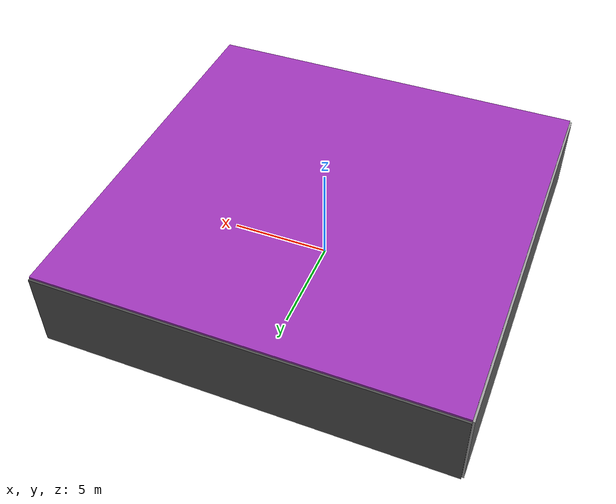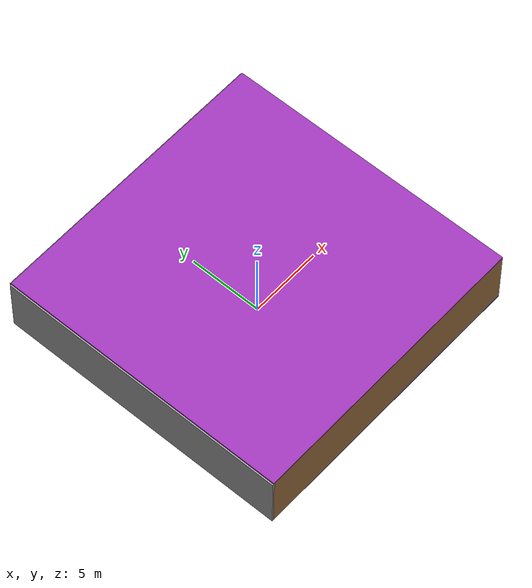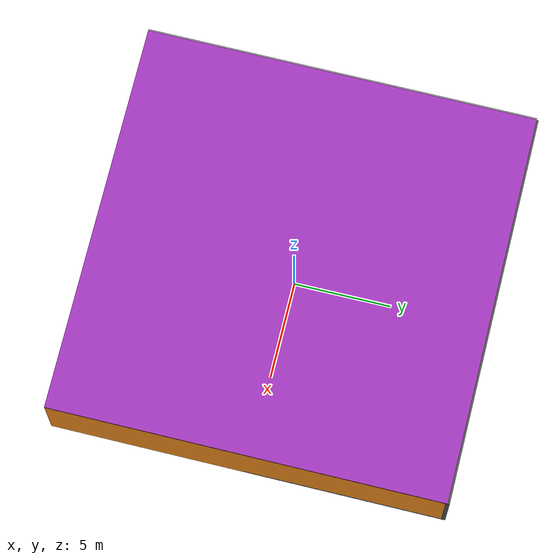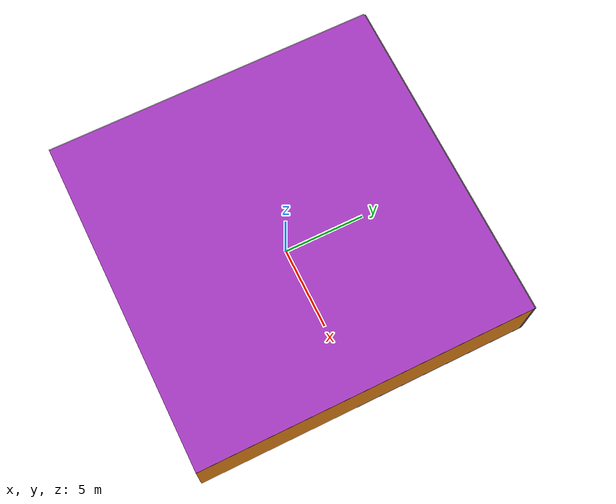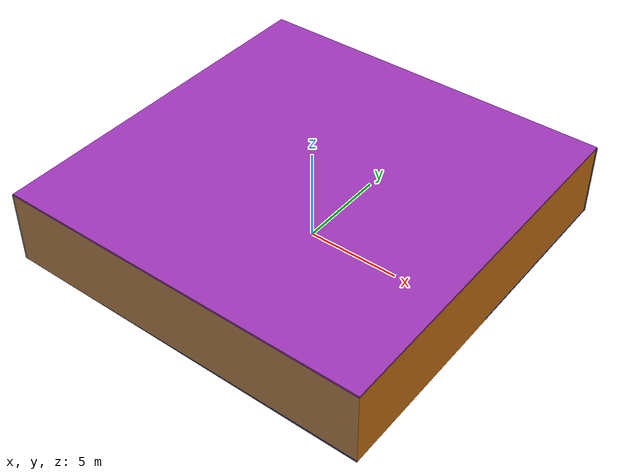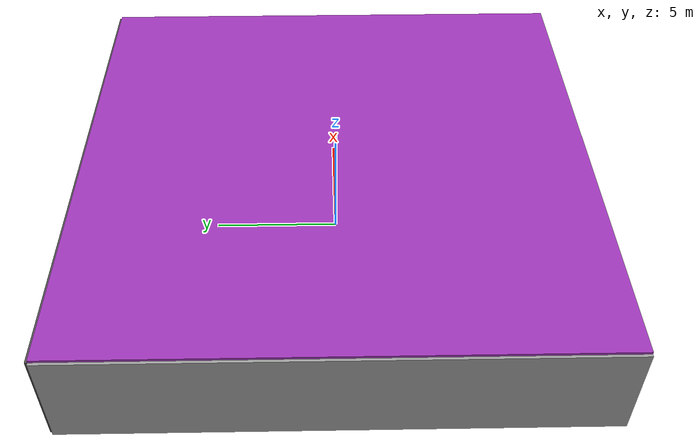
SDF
<sdf version="1.4">
 <world name="default">
  <physics type="ode">
   <max_step_size>0.001</max_step_size>
   <real_time_factor>1</real_time_factor>
   <real_time_update_rate>1000</real_time_update_rate>
   <gravity>0 0 -9.8</gravity>
  </physics>
  <scene><ambient>0.4 0.4 0.4 1</ambient><background>0.7 0.7 0.7 1</background><shadows>1</shadows></scene>
  <model name="Surrounding">
   <static>1</static>
   <link name="Ceiling">
    <collision name="Ceiling_Collision"><geometry><box><size>20 20 0.1</size></box></geometry></collision>
    <visual name="Ceiling_Visual">
     <geometry><box><size>20 20 0.1</size></box></geometry>
     <material>
      <script><uri>file://media/materials/scripts/gazebo.material</uri><name>Gazebo/PurpleGlow</name></script>
     </material>
    </visual>
    <pose>0 0 4.05 0 0 0</pose>
   </link>
   <link name="Wall_South">
    <collision name="Wall_South_Collision">
     <geometry><box><size>20 0 4</size></box></geometry>
     <pose>0 0 2 0 -0 0</pose>
    </collision>
    <visual name="Wall_South_Visual">
     <pose>0 0 2 0 -0 0</pose>
     <geometry><box><size>20 0 4</size></box></geometry>
     <material>
      <script><uri>file://media/materials/scripts/gazebo.material</uri><name>Gazebo/WoodFloor</name></script>
     </material>
    </visual>
    <velocity_decay><linear>0</linear><angular>0</angular></velocity_decay>
    <pose>0 -10 0 0 -0 0</pose>
   </link>
   <link name="Wall_East">
    <collision name="Wall_21_Collision">
     <geometry><box><size>20 0 4</size></box></geometry>
     <pose>0 0 2 0 -0 0</pose>
    </collision>
    <visual name="Wall_21_Visual">
     <pose>0 0 2 0 -0 0</pose>
     <geometry><box><size>20 0 4</size></box></geometry>
     <material>
      <script><uri>file://media/materials/scripts/gazebo.material</uri><name>Gazebo/Orange</name></script>
     </material>
    </visual>
    <velocity_decay><linear>0</linear><angular>0</angular></velocity_decay>
    <pose>10 0 0 0 -0 1.5708</pose>
   </link>
   <link name="Wall_North">
    <collision name="Wall_22_Collision">
     <geometry><box><size>20 0.2 4</size></box></geometry>
     <pose>0 0 2 0 -0 0</pose>
    </collision>
    <visual name="Wall_22_Visual">
     <pose>0 0 2 0 -0 0</pose>
     <geometry><box><size>20 0.2 4</size></box></geometry>
     <material>
      <script><uri>file://media/materials/scripts/gazebo.material</uri><name>Gazebo/Road</name></script>
     </material>
    </visual>
    <velocity_decay><linear>0</linear><angular>0</angular></velocity_decay>
    <pose>0 10 0 0 -0 0</pose>
   </link>
   <link name="Wall_West">
    <collision name="Wall_23_Collision">
     <geometry><box><size>20 0.2 4</size></box></geometry>
     <pose>0 0 2 0 -0 0</pose>
    </collision>
    <visual name="Wall_23_Visual">
     <pose>0 0 2 0 -0 0</pose>
     <geometry><box><size>20 0.2 4</size></box></geometry>
     <material>
      <script><uri>file://media/materials/scripts/gazebo.material</uri><name>Gazebo/Grey</name></script>
     </material>
    </visual>
    <velocity_decay><linear>0</linear><angular>0</angular></velocity_decay>
    <pose>-10 0 0 0 0 -1.5708</pose>
   </link>
   <link name="Ground_link">
    <collision name="collision">
     <pose>0 0 .05 0 -0 0</pose>
     <geometry><box><size>20 20 0.1</size></box></geometry>
    </collision>
    <visual name="visual">
     <pose>0 0 .05 0 -0 0</pose>
     <geometry><box><size>20 20 0.1</size></box></geometry>
     <material>
      <script><uri>file://media/materials/scripts/gazebo.material</uri><name>Gazebo/Blue</name></script>
     </material>
    </visual>
   </link>
   <static>1</static>
  </model>
  <spherical_coordinates>
   <surface_model>EARTH_WGS84</surface_model>
   <latitude_deg>0</latitude_deg>
   <longitude_deg>0</longitude_deg>
   <elevation>0</elevation>
   <heading_deg>0</heading_deg>
  </spherical_coordinates>
  <light name="lightball_0" type="diffuse">
   <diffuse>0.8 0.8 0.8 1</diffuse>
   <specular>0.2 0.2 0.2 1</specular>
   <attenuation>
    <range>100</range>
    <constant>0.7</constant>
    <linear>0.01</linear>
    <quadratic>0.001</quadratic>
   </attenuation>
   <direction>-0.5 0.1 -0.9</direction>
   <pose>0.433308515367 -8.00252442047 2.77368796388 0 0 0</pose>
  </light>
  <light name="lightball_1" type="diffuse">
   <diffuse>0.8 0.8 0.8 1</diffuse>
   <specular>0.2 0.2 0.2 1</specular>
   <attenuation>
    <range>100</range>
    <constant>0.7</constant>
    <linear>0.01</linear>
    <quadratic>0.001</quadratic>
   </attenuation>
   <direction>-0.5 0.1 -0.9</direction>
   <pose>-6.62413767636 0.0780635271867 0.770364325612 0 0 0</pose>
  </light>
  <light name="lightball_2" type="diffuse">
   <diffuse>0.8 0.8 0.8 1</diffuse>
   <specular>0.2 0.2 0.2 1</specular>
   <attenuation>
    <range>100</range>
    <constant>0.7</constant>
    <linear>0.01</linear>
    <quadratic>0.001</quadratic>
   </attenuation>
   <direction>-0.5 0.1 -0.9</direction>
   <pose>8.48529278101 6.14178358162 2.31984732311 0 0 0</pose>
  </light>
  <light name="lightball_3" type="diffuse">
   <diffuse>0.8 0.8 0.8 1</diffuse>
   <specular>0.2 0.2 0.2 1</specular>
   <attenuation>
    <range>100</range>
    <constant>0.7</constant>
    <linear>0.01</linear>
    <quadratic>0.001</quadratic>
   </attenuation>
   <direction>-0.5 0.1 -0.9</direction>
   <pose>-1.08520731519 -4.33131914202 1.51094262245 0 0 0</pose>
  </light>
  <light name="lightball_4" type="diffuse">
   <diffuse>0.8 0.8 0.8 1</diffuse>
   <specular>0.2 0.2 0.2 1</specular>
   <attenuation>
    <range>100</range>
    <constant>0.7</constant>
    <linear>0.01</linear>
    <quadratic>0.001</quadratic>
   </attenuation>
   <direction>-0.5 0.1 -0.9</direction>
   <pose>-3.75636613368 -1.17420046374 1.36139943835 0 0 0</pose>
  </light>
  <light name="lightball_5" type="diffuse">
   <diffuse>0.8 0.8 0.8 1</diffuse>
   <specular>0.2 0.2 0.2 1</specular>
   <attenuation>
    <range>100</range>
    <constant>0.7</constant>
    <linear>0.01</linear>
    <quadratic>0.001</quadratic>
   </attenuation>
   <direction>-0.5 0.1 -0.9</direction>
   <pose>2.4499929589 -5.6449609805 2.46834582406 0 0 0</pose>
  </light>
  <light name="lightball_6" type="diffuse">
   <diffuse>0.8 0.8 0.8 1</diffuse>
   <specular>0.2 0.2 0.2 1</specular>
   <attenuation>
    <range>100</range>
    <constant>0.7</constant>
    <linear>0.01</linear>
    <quadratic>0.001</quadratic>
   </attenuation>
   <direction>-0.5 0.1 -0.9</direction>
   <pose>5.10293945142 6.43573011113 0.7389933683 0 0 0</pose>
  </light>
  <light name="lightball_7" type="diffuse">
   <diffuse>0.8 0.8 0.8 1</diffuse>
   <specular>0.2 0.2 0.2 1</specular>
   <attenuation>
    <range>100</range>
    <constant>0.7</constant>
    <linear>0.01</linear>
    <quadratic>0.001</quadratic>
   </attenuation>
   <direction>-0.5 0.1 -0.9</direction>
   <pose>2.22810035069 8.26611082606 1.85048189346 0 0 0</pose>
  </light>
  <light name="lightball_8" type="diffuse">
   <diffuse>0.8 0.8 0.8 1</diffuse>
   <specular>0.2 0.2 0.2 1</specular>
   <attenuation>
    <range>100</range>
    <constant>0.7</constant>
    <linear>0.01</linear>
    <quadratic>0.001</quadratic>
   </attenuation>
   <direction>-0.5 0.1 -0.9</direction>
   <pose>9.44899183947 -8.49787135487 2.32814346145 0 0 0</pose>
  </light>
  <light name="lightball_9" type="diffuse">
   <diffuse>0.8 0.8 0.8 1</diffuse>
   <specular>0.2 0.2 0.2 1</specular>
   <attenuation>
    <range>100</range>
    <constant>0.7</constant>
    <linear>0.01</linear>
    <quadratic>0.001</quadratic>
   </attenuation>
   <direction>-0.5 0.1 -0.9</direction>
   <pose>-7.51454744289 7.9290122068 3.21854501498 0 0 0</pose>
  </light>
  <light name="lightball_10" type="diffuse">
   <diffuse>0.8 0.8 0.8 1</diffuse>
   <specular>0.2 0.2 0.2 1</specular>
   <attenuation>
    <range>100</range>
    <constant>0.7</constant>
    <linear>0.01</linear>
    <quadratic>0.001</quadratic>
   </attenuation>
   <direction>-0.5 0.1 -0.9</direction>
   <pose>4.41811316548 3.36338635718 2.93985618052 0 0 0</pose>
  </light>
  <include><uri>model://cabinet</uri><pose>-7.17489277252 -7.65651739197 0 0 0 2.50927814276</pose></include>
  <include>
   <uri>model://robocup_3Dsim_goal</uri>
   <pose>-3.9665808369 -1.28753411026 0 0 0 2.31213003675</pose>
  </include>
  <include>
   <uri>model://construction_cone</uri>
   <pose>-1.84550476447 8.1786938258 0 0 0 1.28021344862</pose>
  </include>
  <include><uri>model://cabinet</uri><pose>1.31399080975 -6.96379937761 0 0 0 1.0804500236</pose></include>
  <include>
   <uri>model://construction_cone</uri>
   <pose>4.72083760179 -7.06550168993 0 0 0 3.11280586799</pose>
  </include>
  <include>
   <uri>model://textured_shapes</uri>
   <pose>4.97612880822 -3.75168070887 0 0 0 2.84580905157</pose>
  </include>
  <include><uri>model://cabinet</uri><pose>6.8181628884 -1.55076386717 0 0 0 0.493831137818</pose></include>
  <include><uri>model://table</uri><pose>6.74978240444 8.06000864349 0 0 0 0.0851663986911</pose></include>
 </world>
</sdf>

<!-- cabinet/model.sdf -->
<sdf version="1.5">
  <model name="cabinet">
    <static>true</static>
    <link name="cabinet_bottom_plate">
      <inertial>
        <pose>0 0 -1 0 0 0</pose>
        <inertia>
          <ixx>2.050000</ixx>
          <ixy>0</ixy>
          <ixz>0</ixz>
          <iyy>2.050000</iyy>
          <iyz>0</iyz>
          <izz>2.050000</izz>
        </inertia>
        <mass>25.000000</mass>
      </inertial>
      <collision name="cabinet_bottom_plate_geom">
        <pose>0 0 0.010000 0 0 0</pose>
        <geometry>
          <box>
            <size>0.450000 0.450000 0.020000</size>
          </box>
        </geometry>
      </collision>
      <visual name="cabinet_bottom_plate_geom_visual">
        <pose>0 0 0.010000 0 0 0</pose>
        <geometry>
          <box>
            <size>0.450000 0.450000 0.020000</size>
          </box>
        </geometry>
        <material>
          <script>
            <uri>model://media/materials/scripts/gazebo.material</uri>
            <name>Gazebo/Wood</name>
          </script>
        </material>
      </visual>
      <collision name="cabinet_bottom_plate_geom_cabinet_back_plate">
        <pose>0.235000 0 0.510000 0 0 0</pose>
        <geometry>
          <box>
            <size>0.020000 0.450000 1.020000</size>
          </box>
        </geometry>
      </collision>
      <visual name="cabinet_bottom_plate_geom_cabinet_back_plate_visual">
        <pose>0.235000 0 0.510000 0 0 0</pose>
        <geometry>
          <box>
            <size>0.020000 0.450000 1.020000</size>
          </box>
        </geometry>
        <material>
          <script>
            <uri>model://media/materials/scripts/gazebo.material</uri>
            <name>Gazebo/Wood</name>
          </script>
        </material>
      </visual>
      <collision name="cabinet_bottom_plate_geom_cabinet_left_plate">
        <pose>0 0.235000 0.510000 0 0 0</pose>
        <geometry>
          <box>
            <size>0.450000 0.020000 1.020000</size>
          </box>
        </geometry>
      </collision>
      <visual name="cabinet_bottom_plate_geom_cabinet_left_plate_visual">
        <pose>0 0.235000 0.510000 0 0 0</pose>
        <geometry>
          <box>
            <size>0.450000 0.020000 1.020000</size>
          </box>
        </geometry>
        <material>
          <script>
            <uri>model://media/materials/scripts/gazebo.material</uri>
            <name>Gazebo/Wood</name>
          </script>
        </material>
      </visual>
      <collision name="cabinet_bottom_plate_geom_cabinet_middle_plate">
        <pose>0 0 0.510000 0 0 0</pose>
        <geometry>
          <box>
            <size>0.450000 0.450000 0.020000</size>
          </box>
        </geometry>
      </collision>
      <visual name="cabinet_bottom_plate_geom_cabinet_middle_plate_visual">
        <pose>0 0 0.510000 0 0 0</pose>
        <geometry>
          <box>
            <size>0.450000 0.450000 0.020000</size>
          </box>
        </geometry>
        <material>
          <script>
            <uri>model://media/materials/scripts/gazebo.material</uri>
            <name>Gazebo/Wood</name>
          </script>
        </material>
      </visual>
      <collision name="cabinet_bottom_plate_geom_cabinet_right_plate">
        <pose>0 -0.235000 0.510000 0 0 0</pose>
        <geometry>
          <box>
            <size>0.450000 0.020000 1.020000</size>
          </box>
        </geometry>
      </collision>
      <visual name="cabinet_bottom_plate_geom_cabinet_right_plate_visual">
        <pose>0 -0.235000 0.510000 0 0 0</pose>
        <geometry>
          <box>
            <size>0.450000 0.020000 1.020000</size>
          </box>
        </geometry>
        <material>
          <script>
            <uri>model://media/materials/scripts/gazebo.material</uri>
            <name>Gazebo/Wood</name>
          </script>
        </material>
      </visual>
      <collision name="cabinet_bottom_plate_geom_cabinet_top_plate">
        <pose>0 0 1.010000 0 0 0</pose>
        <geometry>
          <box>
            <size>0.450000 0.450000 0.020000</size>
          </box>
        </geometry>
      </collision>
      <visual name="cabinet_bottom_plate_geom_cabinet_top_plate_visual">
        <pose>0 0 1.010000 0 0 0</pose>
        <geometry>
          <box>
            <size>0.450000 0.450000 0.020000</size>
          </box>
        </geometry>
        <material>
          <script>
            <uri>model://media/materials/scripts/gazebo.material</uri>
            <name>Gazebo/Wood</name>
          </script>
        </material>
      </visual>
    </link>
  </model>
</sdf>

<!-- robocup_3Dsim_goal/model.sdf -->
<sdf version="1.5">
  <model name="robocup_3d_goal">
    <static>true</static>
    <link name="left_post">
      <pose>0 1.05 0.45 0 0 0</pose>
      <collision name="collision">
        <geometry>
          <cylinder>
            <radius>0.05</radius>
            <length>0.9</length>
          </cylinder>
        </geometry>
      </collision>
      <visual name="visual">
        <geometry>
          <cylinder>
            <radius>0.05</radius>
            <length>0.9</length>
          </cylinder>
        </geometry>
        <material>
          <script>
            <uri>file://media/materials/scripts/gazebo.material</uri>
            <name>Gazebo/ZincYellow</name>
          </script>
        </material>
      </visual>
    </link>
    <link name="left_support_horiz_lower">
      <pose>0.30 1.05 0.01 0 0 0</pose>
      <collision name="collision">
        <geometry>
          <box>
            <size>0.50 0.02 0.02</size>
          </box>
        </geometry>
      </collision>
      <visual name="visual">
        <geometry>
          <box>
            <size>0.50 0.02 0.02</size>
          </box>
        </geometry>
        <material>
          <script>
            <uri>file://media/materials/scripts/gazebo.material</uri>
            <name>Gazebo/White</name>
          </script>
        </material>
      </visual>
    </link>
    <link name="left_support_horiz_upper">
      <pose>0.30 1.05 0.79 0 0 0</pose>
      <collision name="collision">
        <geometry>
          <box>
            <size>0.50 0.02 0.02</size>
          </box>
        </geometry>
      </collision>
      <visual name="visual">
        <geometry>
          <box>
            <size>0.50 0.02 0.02</size>
          </box>
        </geometry>
        <material>
          <script>
            <uri>file://media/materials/scripts/gazebo.material</uri>
            <name>Gazebo/White</name>
          </script>
        </material>
      </visual>
    </link>
    <link name="left_support_vertical">
      <pose>0.56 1.05 0.4 0 1.5708 0</pose>
      <collision name="collision">
        <geometry>
          <box>
            <size>0.80 0.02 0.02</size>
          </box>
        </geometry>
      </collision>
      <visual name="visual">
        <geometry>
          <box>
            <size>0.80 0.02 0.02</size>
          </box>
        </geometry>
        <material>
          <script>
            <uri>file://media/materials/scripts/gazebo.material</uri>
            <name>Gazebo/White</name>
          </script>
        </material>
      </visual>
    </link>
    <link name="right_support_horiz_lower">
      <pose>0.30 -1.05 0.01 0 0 0</pose>
      <collision name="collision">
        <geometry>
          <box>
            <size>0.50 0.02 0.02</size>
          </box>
        </geometry>
      </collision>
      <visual name="visual">
        <geometry>
          <box>
            <size>0.50 0.02 0.02</size>
          </box>
        </geometry>
        <material>
          <script>
            <uri>file://media/materials/scripts/gazebo.material</uri>
            <name>Gazebo/White</name>
          </script>
        </material>
      </visual>
    </link>
    <link name="right_support_horiz_upper">
      <pose>0.30 -1.05 0.79 0 0 0</pose>
      <collision name="collision">
        <geometry>
          <box>
            <size>0.50 0.02 0.02</size>
          </box>
        </geometry>
      </collision>
      <visual name="visual">
        <geometry>
          <box>
            <size>0.50 0.02 0.02</size>
          </box>
        </geometry>
        <material>
          <script>
            <uri>file://media/materials/scripts/gazebo.material</uri>
            <name>Gazebo/White</name>
          </script>
        </material>
      </visual>
    </link>
    <link name="right_support_vertical">
      <pose>0.56 -1.05 0.4 0 1.5708 0</pose>
      <collision name="collision">
        <geometry>
          <box>
            <size>0.80 0.02 0.02</size>
          </box>
        </geometry>
      </collision>
      <visual name="visual">
        <geometry>
          <box>
            <size>0.80 0.02 0.02</size>
          </box>
        </geometry>
        <material>
          <script>
            <uri>file://media/materials/scripts/gazebo.material</uri>
            <name>Gazebo/White</name>
          </script>
        </material>
      </visual>
    </link>
    <link name="center_support_horiz_lower">
      <pose>0.56 0 0.01 0 1.5708 0</pose>
      <collision name="collision">
        <geometry>
          <box>
            <size>0.02 2.08 0.02</size>
          </box>
        </geometry>
      </collision>
      <visual name="visual">
        <geometry>
          <box>
            <size>0.02 2.08 0.02</size>
          </box>
        </geometry>
        <material>
          <script>
            <uri>file://media/materials/scripts/gazebo.material</uri>
            <name>Gazebo/White</name>
          </script>
        </material>
      </visual>
    </link>
    <link name="center_support_horiz_upper">
      <pose>0.56 0 0.79 0 1.5708 0</pose>
      <collision name="collision">
        <geometry>
          <box>
            <size>0.02 2.08 0.02</size>
          </box>
        </geometry>
      </collision>
      <visual name="visual">
        <geometry>
          <box>
            <size>0.02 2.08 0.02</size>
          </box>
        </geometry>
        <material>
          <script>
            <uri>file://media/materials/scripts/gazebo.material</uri>
            <name>Gazebo/White</name>
          </script>
        </material>
      </visual>
    </link>
    <link name="right_post">
      <pose>0 -1.05 0.45 0 0 0</pose>
      <collision name="collision">
        <geometry>
          <cylinder>
            <radius>0.05</radius>
            <length>0.9</length>
          </cylinder>
        </geometry>
      </collision>
      <visual name="visual">
        <geometry>
          <cylinder>
            <radius>0.05</radius>
            <length>0.9</length>
          </cylinder>
        </geometry>
        <material>
          <script>
            <uri>file://media/materials/scripts/gazebo.material</uri>
            <name>Gazebo/ZincYellow</name>
          </script>
        </material>
      </visual>
    </link>
    <link name="crossbar">
      <pose>0 0 0.85 1.57 1.57 0</pose>
      <collision name="collision">
        <geometry>
          <cylinder>
            <radius>0.05</radius>
            <length>2.0</length>
          </cylinder>
        </geometry>
      </collision>
      <visual name="visual">
        <geometry>
          <cylinder>
            <radius>0.05</radius>
            <length>2.0</length>
          </cylinder>
        </geometry>
        <material>
          <script>
            <uri>file://media/materials/scripts/gazebo.material</uri>
            <name>Gazebo/ZincYellow</name>
          </script>
        </material>
      </visual>
    </link>
    <link name="center_net">
      <pose>0.56 0 0.40 0 0 0</pose>
      <collision name="collision">
        <geometry>
          <box>
            <size>0.01 2.1 0.80</size>
          </box>
        </geometry>
      </collision>
      <visual name="visual">
        <geometry>
          <box>
            <size>0.01 2.1 0.80</size>
          </box>
        </geometry>
        <material>
          <script>
            <uri>model://../model_source/models/robocup09_spl_field/materials/scripts/</uri>
            <uri>model://../model_source/models/robocup09_spl_field/materials/textures/</uri>
            <name>RoboCup/Net</name>
          </script>
        </material>
      </visual>
    </link>
    <link name="left_net">
      <pose>0.30 1.05 0.40 0 0 0</pose>
      <collision name="collision">
        <geometry>
          <box>
            <size>0.50 0.01 0.76</size>
          </box>
        </geometry>
      </collision>
      <visual name="visual">
        <geometry>
          <box>
            <size>0.50 0.01 0.76</size>
          </box>
        </geometry>
        <material>
          <script>
            <uri>model://../model_source/models/robocup09_spl_field/materials/scripts/</uri>
            <uri>model://../model_source/models/robocup09_spl_field/materials/textures/</uri>
            <name>RoboCup/Net</name>
          </script>
        </material>
      </visual>
    </link>
    <link name="right_net">
      <pose>0.30 -1.05 0.40 0 0 0</pose>
      <collision name="collision">
        <geometry>
          <box>
            <size>0.50 0.01 0.76</size>
          </box>
        </geometry>
      </collision>
      <visual name="visual">
        <geometry>
          <box>
            <size>0.50 0.01 0.76</size>
          </box>
        </geometry>
        <material>
          <script>
            <uri>model://../model_source/models/robocup09_spl_field/materials/scripts/</uri>
            <uri>model://../model_source/models/robocup09_spl_field/materials/textures/</uri>
            <name>RoboCup/Net</name>
          </script>
        </material>
      </visual>
    </link>
  </model>
</sdf>

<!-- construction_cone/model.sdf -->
<sdf version="1.5">
  <model name="Construction Cone">
    <link name="link">
      <collision name="collision">
        <geometry>
          <mesh>
            <scale>10 10 10</scale>
            <uri>file://isr-testbed/construction_cone/meshes/construction_cone.dae</uri>
          </mesh>
        </geometry>
      </collision>
      <visual name="visual">
        <geometry>
          <mesh>
            <scale>10 10 10</scale>
            <uri>file://isr-testbed/construction_cone/meshes/construction_cone.dae</uri>
          </mesh>
        </geometry>
      </visual>
    </link>
  </model>
</sdf>

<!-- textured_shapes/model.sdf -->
<sdf version="1.6">
  <model name="textured_shapes">
    <pose>0 0 0.5 0 0 0</pose>
    <link name="box">
      <pose>0 -1.5 0 0 0 0</pose>
      <collision name="collision">
        <geometry>
          <box>
            <size>1 1 1</size>
          </box>
        </geometry>
      </collision>
      <visual name="visual">
        <geometry>
          <box>
            <size>1 1 1</size>
          </box>
        </geometry>
        <material>
          <script>
            <uri>model://../model_source/models/textured_shapes/materials/scripts</uri>
            <uri>model://../model_source/models/textured_shapes/materials/textures</uri>
            <name>TexturedShape/Squares</name>
          </script>
        </material>
      </visual>
    </link>
    <link name="sphere">
      <collision name="collision">
        <geometry>
          <sphere>
            <radius>0.5</radius>
          </sphere>
        </geometry>
      </collision>
      <visual name="visual">
        <geometry>
          <sphere>
            <radius>0.5</radius>
          </sphere>
        </geometry>
        <material>
          <script>
            <uri>model://../model_source/models/textured_shapes/materials/scripts</uri>
            <uri>model://../model_source/models/textured_shapes/materials/textures</uri>
            <name>TexturedShape/Squares</name>
          </script>
        </material>
      </visual>
    </link>
    <link name="cylinder">
      <pose>0 1.5 0 0 0 0</pose>
      <collision name="collision">
        <geometry>
          <cylinder>
            <radius>0.5</radius>
            <length>1</length>
          </cylinder>
        </geometry>
      </collision>
      <visual name="visual">
        <geometry>
          <cylinder>
            <radius>0.5</radius>
            <length>1</length>
          </cylinder>
        </geometry>
        <material>
          <script>
            <uri>model://../model_source/models/textured_shapes/materials/scripts</uri>
            <uri>model://../model_source/models/textured_shapes/materials/textures</uri>
            <name>TexturedShape/Squares</name>
          </script>
        </material>
      </visual>
    </link>
  </model>
</sdf>

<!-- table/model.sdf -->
<sdf version="1.5">
  <model name="table">
    <static>true</static>
    <link name="link">
      <collision name="surface">
        <pose>0 0 1.0 0 0 0</pose>
        <geometry>
          <box>
            <size>1.5 0.8 0.03</size>
          </box>
        </geometry>
        <surface>
          <friction>
            <ode>
              <mu>0.6</mu>
              <mu2>0.6</mu2>
            </ode>
          </friction>
        </surface>
      </collision>
      <visual name="visual1">
        <pose>0 0 1.0 0 0 0</pose>
        <geometry>
          <box>
            <size>1.5 0.8 0.03</size>
          </box>
        </geometry>
        <material>
          <script>
            <uri>model://media/materials/scripts/gazebo.material</uri>
            <name>Gazebo/Wood</name>
          </script>
        </material>
      </visual>
      <collision name="front_left_leg">
        <pose>0.68 0.38 0.5 0 0 0</pose>
        <geometry>
          <cylinder>
            <radius>0.02</radius>
            <length>1.0</length>
          </cylinder>
        </geometry>
      </collision>
      <visual name="front_left_leg">
        <pose>0.68 0.38 0.5 0 0 0</pose>
        <geometry>
          <cylinder>
            <radius>0.02</radius>
            <length>1.0</length>
          </cylinder>
        </geometry>
        <material>
          <script>
            <uri>model://media/materials/scripts/gazebo.material</uri>
            <name>Gazebo/Grey</name>
          </script>
        </material>
      </visual>
      <collision name="front_right_leg">
        <pose>0.68 -0.38 0.5 0 0 0</pose>
        <geometry>
          <cylinder>
            <radius>0.02</radius>
            <length>1.0</length>
          </cylinder>
        </geometry>
      </collision>
      <visual name="front_right_leg">
        <pose>0.68 -0.38 0.5 0 0 0</pose>
        <geometry>
          <cylinder>
            <radius>0.02</radius>
            <length>1.0</length>
          </cylinder>
        </geometry>
        <material>
          <script>
            <uri>model://media/materials/scripts/gazebo.material</uri>
            <name>Gazebo/Grey</name>
          </script>
        </material>
      </visual>
      <collision name="back_right_leg">
        <pose>-0.68 -0.38 0.5 0 0 0</pose>
        <geometry>
          <cylinder>
            <radius>0.02</radius>
            <length>1.0</length>
          </cylinder>
        </geometry>
      </collision>
      <visual name="back_right_leg">
        <pose>-0.68 -0.38 0.5 0 0 0</pose>
        <geometry>
          <cylinder>
            <radius>0.02</radius>
            <length>1.0</length>
          </cylinder>
        </geometry>
        <material>
          <script>
            <uri>model://media/materials/scripts/gazebo.material</uri>
            <name>Gazebo/Grey</name>
          </script>
        </material>
      </visual>
      <collision name="back_left_leg">
        <pose>-0.68 0.38 0.5 0 0 0</pose>
        <geometry>
          <cylinder>
            <radius>0.02</radius>
            <length>1.0</length>
          </cylinder>
        </geometry>
      </collision>
      <visual name="back_left_leg">
        <pose>-0.68 0.38 0.5 0 0 0</pose>
        <geometry>
          <cylinder>
            <radius>0.02</radius>
            <length>1.0</length>
          </cylinder>
        </geometry>
        <material>
          <script>
            <uri>model://media/materials/scripts/gazebo.material</uri>
            <name>Gazebo/Grey</name>
          </script>
        </material>
      </visual>
    </link>
  </model>
</sdf>
